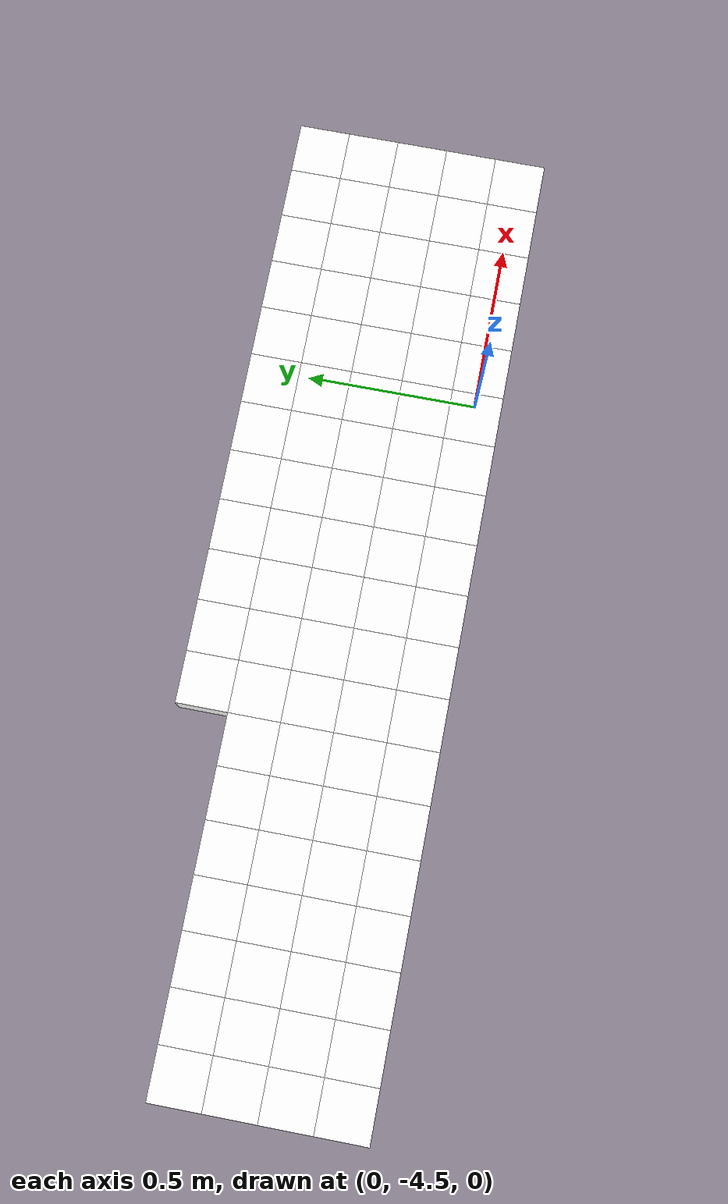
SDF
<sdf version="1.7">
 <world name="default">
  <include><uri>model://sun</uri></include>
  <model name="static_environment">
   <static>true</static>
   <link name="region_951">
    <pose>-2.000413758788262 -4.049999981591792 0.0 0.0 0.0 4.7123</pose>
    <collision name="region_951_collision">
     <geometry><box><size>0.15 0.15 0.1</size></box></geometry>
     <surface><friction><ode><mu>1.0</mu><mu2>1.0</mu2></ode></friction></surface>
    </collision>
    <visual name="region_951_visual">
     <geometry><box><size>0.15 0.15 0.1</size></box></geometry>
     <material><ambient>1.0 1.0 1.0 1.0</ambient><diffuse>1.0 1.0 1.0 1.0</diffuse></material>
    </visual>
   </link>
   <link name="region_952">
    <pose>-2.000427105845948 -4.19999998099798 0.0 0.0 0.0 4.7123</pose>
    <collision name="region_952_collision">
     <geometry><box><size>0.15 0.15 0.1</size></box></geometry>
     <surface><friction><ode><mu>1.0</mu><mu2>1.0</mu2></ode></friction></surface>
    </collision>
    <visual name="region_952_visual">
     <geometry><box><size>0.15 0.15 0.1</size></box></geometry>
     <material><ambient>1.0 1.0 1.0 1.0</ambient><diffuse>1.0 1.0 1.0 1.0</diffuse></material>
    </visual>
   </link>
   <link name="region_953">
    <pose>-2.000440452903634 -4.349999980404167 0.0 0.0 0.0 4.7123</pose>
    <collision name="region_953_collision">
     <geometry><box><size>0.15 0.15 0.1</size></box></geometry>
     <surface><friction><ode><mu>1.0</mu><mu2>1.0</mu2></ode></friction></surface>
    </collision>
    <visual name="region_953_visual">
     <geometry><box><size>0.15 0.15 0.1</size></box></geometry>
     <material><ambient>1.0 1.0 1.0 1.0</ambient><diffuse>1.0 1.0 1.0 1.0</diffuse></material>
    </visual>
   </link>
   <link name="region_954">
    <pose>-2.0004537999613197 -4.4999999798103545 0.0 0.0 0.0 4.7123</pose>
    <collision name="region_954_collision">
     <geometry><box><size>0.15 0.15 0.1</size></box></geometry>
     <surface><friction><ode><mu>1.0</mu><mu2>1.0</mu2></ode></friction></surface>
    </collision>
    <visual name="region_954_visual">
     <geometry><box><size>0.15 0.15 0.1</size></box></geometry>
     <material><ambient>1.0 1.0 1.0 1.0</ambient><diffuse>1.0 1.0 1.0 1.0</diffuse></material>
    </visual>
   </link>
   <link name="region_956">
    <pose>-1.8504137593820753 -4.050013328649478 0.0 0.0 0.0 4.7123</pose>
    <collision name="region_956_collision">
     <geometry><box><size>0.15 0.15 0.1</size></box></geometry>
     <surface><friction><ode><mu>1.0</mu><mu2>1.0</mu2></ode></friction></surface>
    </collision>
    <visual name="region_956_visual">
     <geometry><box><size>0.15 0.15 0.1</size></box></geometry>
     <material><ambient>1.0 1.0 1.0 1.0</ambient><diffuse>1.0 1.0 1.0 1.0</diffuse></material>
    </visual>
   </link>
   <link name="region_957">
    <pose>-1.8504271064397613 -4.2000133280556655 0.0 0.0 0.0 4.7123</pose>
    <collision name="region_957_collision">
     <geometry><box><size>0.15 0.15 0.1</size></box></geometry>
     <surface><friction><ode><mu>1.0</mu><mu2>1.0</mu2></ode></friction></surface>
    </collision>
    <visual name="region_957_visual">
     <geometry><box><size>0.15 0.15 0.1</size></box></geometry>
     <material><ambient>1.0 1.0 1.0 1.0</ambient><diffuse>1.0 1.0 1.0 1.0</diffuse></material>
    </visual>
   </link>
   <link name="region_958">
    <pose>-1.850440453497447 -4.350013327461853 0.0 0.0 0.0 4.7123</pose>
    <collision name="region_958_collision">
     <geometry><box><size>0.15 0.15 0.1</size></box></geometry>
     <surface><friction><ode><mu>1.0</mu><mu2>1.0</mu2></ode></friction></surface>
    </collision>
    <visual name="region_958_visual">
     <geometry><box><size>0.15 0.15 0.1</size></box></geometry>
     <material><ambient>1.0 1.0 1.0 1.0</ambient><diffuse>1.0 1.0 1.0 1.0</diffuse></material>
    </visual>
   </link>
   <link name="region_959">
    <pose>-1.850453800555133 -4.50001332686804 0.0 0.0 0.0 4.7123</pose>
    <collision name="region_959_collision">
     <geometry><box><size>0.15 0.15 0.1</size></box></geometry>
     <surface><friction><ode><mu>1.0</mu><mu2>1.0</mu2></ode></friction></surface>
    </collision>
    <visual name="region_959_visual">
     <geometry><box><size>0.15 0.15 0.1</size></box></geometry>
     <material><ambient>1.0 1.0 1.0 1.0</ambient><diffuse>1.0 1.0 1.0 1.0</diffuse></material>
    </visual>
   </link>
   <link name="region_961">
    <pose>-1.7004137599758886 -4.050026675707164 0.0 0.0 0.0 4.7123</pose>
    <collision name="region_961_collision">
     <geometry><box><size>0.15 0.15 0.1</size></box></geometry>
     <surface><friction><ode><mu>1.0</mu><mu2>1.0</mu2></ode></friction></surface>
    </collision>
    <visual name="region_961_visual">
     <geometry><box><size>0.15 0.15 0.1</size></box></geometry>
     <material><ambient>1.0 1.0 1.0 1.0</ambient><diffuse>1.0 1.0 1.0 1.0</diffuse></material>
    </visual>
   </link>
   <link name="region_962">
    <pose>-1.7004271070335744 -4.200026675113351 0.0 0.0 0.0 4.7123</pose>
    <collision name="region_962_collision">
     <geometry><box><size>0.15 0.15 0.1</size></box></geometry>
     <surface><friction><ode><mu>1.0</mu><mu2>1.0</mu2></ode></friction></surface>
    </collision>
    <visual name="region_962_visual">
     <geometry><box><size>0.15 0.15 0.1</size></box></geometry>
     <material><ambient>1.0 1.0 1.0 1.0</ambient><diffuse>1.0 1.0 1.0 1.0</diffuse></material>
    </visual>
   </link>
   <link name="region_963">
    <pose>-1.7004404540912603 -4.350026674519539 0.0 0.0 0.0 4.7123</pose>
    <collision name="region_963_collision">
     <geometry><box><size>0.15 0.15 0.1</size></box></geometry>
     <surface><friction><ode><mu>1.0</mu><mu2>1.0</mu2></ode></friction></surface>
    </collision>
    <visual name="region_963_visual">
     <geometry><box><size>0.15 0.15 0.1</size></box></geometry>
     <material><ambient>1.0 1.0 1.0 1.0</ambient><diffuse>1.0 1.0 1.0 1.0</diffuse></material>
    </visual>
   </link>
   <link name="region_964">
    <pose>-1.700453801148946 -4.500026673925726 0.0 0.0 0.0 4.7123</pose>
    <collision name="region_964_collision">
     <geometry><box><size>0.15 0.15 0.1</size></box></geometry>
     <surface><friction><ode><mu>1.0</mu><mu2>1.0</mu2></ode></friction></surface>
    </collision>
    <visual name="region_964_visual">
     <geometry><box><size>0.15 0.15 0.1</size></box></geometry>
     <material><ambient>1.0 1.0 1.0 1.0</ambient><diffuse>1.0 1.0 1.0 1.0</diffuse></material>
    </visual>
   </link>
   <link name="region_966">
    <pose>-1.5504137605697017 -4.05004002276485 0.0 0.0 0.0 4.7123</pose>
    <collision name="region_966_collision">
     <geometry><box><size>0.15 0.15 0.1</size></box></geometry>
     <surface><friction><ode><mu>1.0</mu><mu2>1.0</mu2></ode></friction></surface>
    </collision>
    <visual name="region_966_visual">
     <geometry><box><size>0.15 0.15 0.1</size></box></geometry>
     <material><ambient>1.0 1.0 1.0 1.0</ambient><diffuse>1.0 1.0 1.0 1.0</diffuse></material>
    </visual>
   </link>
   <link name="region_967">
    <pose>-1.5504271076273874 -4.200040022171037 0.0 0.0 0.0 4.7123</pose>
    <collision name="region_967_collision">
     <geometry><box><size>0.15 0.15 0.1</size></box></geometry>
     <surface><friction><ode><mu>1.0</mu><mu2>1.0</mu2></ode></friction></surface>
    </collision>
    <visual name="region_967_visual">
     <geometry><box><size>0.15 0.15 0.1</size></box></geometry>
     <material><ambient>1.0 1.0 1.0 1.0</ambient><diffuse>1.0 1.0 1.0 1.0</diffuse></material>
    </visual>
   </link>
   <link name="region_968">
    <pose>-1.5504404546850734 -4.350040021577224 0.0 0.0 0.0 4.7123</pose>
    <collision name="region_968_collision">
     <geometry><box><size>0.15 0.15 0.1</size></box></geometry>
     <surface><friction><ode><mu>1.0</mu><mu2>1.0</mu2></ode></friction></surface>
    </collision>
    <visual name="region_968_visual">
     <geometry><box><size>0.15 0.15 0.1</size></box></geometry>
     <material><ambient>1.0 1.0 1.0 1.0</ambient><diffuse>1.0 1.0 1.0 1.0</diffuse></material>
    </visual>
   </link>
   <link name="region_969">
    <pose>-1.5504538017427594 -4.500040020983412 0.0 0.0 0.0 4.7123</pose>
    <collision name="region_969_collision">
     <geometry><box><size>0.15 0.15 0.1</size></box></geometry>
     <surface><friction><ode><mu>1.0</mu><mu2>1.0</mu2></ode></friction></surface>
    </collision>
    <visual name="region_969_visual">
     <geometry><box><size>0.15 0.15 0.1</size></box></geometry>
     <material><ambient>1.0 1.0 1.0 1.0</ambient><diffuse>1.0 1.0 1.0 1.0</diffuse></material>
    </visual>
   </link>
   <link name="region_971">
    <pose>-1.4004137611635148 -4.050053369822536 0.0 0.0 0.0 4.7123</pose>
    <collision name="region_971_collision">
     <geometry><box><size>0.15 0.15 0.1</size></box></geometry>
     <surface><friction><ode><mu>1.0</mu><mu2>1.0</mu2></ode></friction></surface>
    </collision>
    <visual name="region_971_visual">
     <geometry><box><size>0.15 0.15 0.1</size></box></geometry>
     <material><ambient>1.0 1.0 1.0 1.0</ambient><diffuse>1.0 1.0 1.0 1.0</diffuse></material>
    </visual>
   </link>
   <link name="region_972">
    <pose>-1.4004271082212008 -4.200053369228724 0.0 0.0 0.0 4.7123</pose>
    <collision name="region_972_collision">
     <geometry><box><size>0.15 0.15 0.1</size></box></geometry>
     <surface><friction><ode><mu>1.0</mu><mu2>1.0</mu2></ode></friction></surface>
    </collision>
    <visual name="region_972_visual">
     <geometry><box><size>0.15 0.15 0.1</size></box></geometry>
     <material><ambient>1.0 1.0 1.0 1.0</ambient><diffuse>1.0 1.0 1.0 1.0</diffuse></material>
    </visual>
   </link>
   <link name="region_973">
    <pose>-1.4004404552788867 -4.350053368634911 0.0 0.0 0.0 4.7123</pose>
    <collision name="region_973_collision">
     <geometry><box><size>0.15 0.15 0.1</size></box></geometry>
     <surface><friction><ode><mu>1.0</mu><mu2>1.0</mu2></ode></friction></surface>
    </collision>
    <visual name="region_973_visual">
     <geometry><box><size>0.15 0.15 0.1</size></box></geometry>
     <material><ambient>1.0 1.0 1.0 1.0</ambient><diffuse>1.0 1.0 1.0 1.0</diffuse></material>
    </visual>
   </link>
   <link name="region_974">
    <pose>-1.4004538023365725 -4.500053368041098 0.0 0.0 0.0 4.7123</pose>
    <collision name="region_974_collision">
     <geometry><box><size>0.15 0.15 0.1</size></box></geometry>
     <surface><friction><ode><mu>1.0</mu><mu2>1.0</mu2></ode></friction></surface>
    </collision>
    <visual name="region_974_visual">
     <geometry><box><size>0.15 0.15 0.1</size></box></geometry>
     <material><ambient>1.0 1.0 1.0 1.0</ambient><diffuse>1.0 1.0 1.0 1.0</diffuse></material>
    </visual>
   </link>
   <link name="region_976">
    <pose>-1.2504137617573279 -4.050066716880222 0.0 0.0 0.0 4.7123</pose>
    <collision name="region_976_collision">
     <geometry><box><size>0.15 0.15 0.1</size></box></geometry>
     <surface><friction><ode><mu>1.0</mu><mu2>1.0</mu2></ode></friction></surface>
    </collision>
    <visual name="region_976_visual">
     <geometry><box><size>0.15 0.15 0.1</size></box></geometry>
     <material><ambient>1.0 1.0 1.0 1.0</ambient><diffuse>1.0 1.0 1.0 1.0</diffuse></material>
    </visual>
   </link>
   <link name="region_977">
    <pose>-1.250427108815014 -4.200066716286409 0.0 0.0 0.0 4.7123</pose>
    <collision name="region_977_collision">
     <geometry><box><size>0.15 0.15 0.1</size></box></geometry>
     <surface><friction><ode><mu>1.0</mu><mu2>1.0</mu2></ode></friction></surface>
    </collision>
    <visual name="region_977_visual">
     <geometry><box><size>0.15 0.15 0.1</size></box></geometry>
     <material><ambient>1.0 1.0 1.0 1.0</ambient><diffuse>1.0 1.0 1.0 1.0</diffuse></material>
    </visual>
   </link>
   <link name="region_978">
    <pose>-1.2504404558726998 -4.350066715692597 0.0 0.0 0.0 4.7123</pose>
    <collision name="region_978_collision">
     <geometry><box><size>0.15 0.15 0.1</size></box></geometry>
     <surface><friction><ode><mu>1.0</mu><mu2>1.0</mu2></ode></friction></surface>
    </collision>
    <visual name="region_978_visual">
     <geometry><box><size>0.15 0.15 0.1</size></box></geometry>
     <material><ambient>1.0 1.0 1.0 1.0</ambient><diffuse>1.0 1.0 1.0 1.0</diffuse></material>
    </visual>
   </link>
   <link name="region_979">
    <pose>-1.2504538029303855 -4.500066715098784 0.0 0.0 0.0 4.7123</pose>
    <collision name="region_979_collision">
     <geometry><box><size>0.15 0.15 0.1</size></box></geometry>
     <surface><friction><ode><mu>1.0</mu><mu2>1.0</mu2></ode></friction></surface>
    </collision>
    <visual name="region_979_visual">
     <geometry><box><size>0.15 0.15 0.1</size></box></geometry>
     <material><ambient>1.0 1.0 1.0 1.0</ambient><diffuse>1.0 1.0 1.0 1.0</diffuse></material>
    </visual>
   </link>
   <link name="region_981">
    <pose>-1.100413762351141 -4.050080063937908 0.0 0.0 0.0 4.7123</pose>
    <collision name="region_981_collision">
     <geometry><box><size>0.15 0.15 0.1</size></box></geometry>
     <surface><friction><ode><mu>1.0</mu><mu2>1.0</mu2></ode></friction></surface>
    </collision>
    <visual name="region_981_visual">
     <geometry><box><size>0.15 0.15 0.1</size></box></geometry>
     <material><ambient>1.0 1.0 1.0 1.0</ambient><diffuse>1.0 1.0 1.0 1.0</diffuse></material>
    </visual>
   </link>
   <link name="region_982">
    <pose>-1.1004271094088272 -4.200080063344095 0.0 0.0 0.0 4.7123</pose>
    <collision name="region_982_collision">
     <geometry><box><size>0.15 0.15 0.1</size></box></geometry>
     <surface><friction><ode><mu>1.0</mu><mu2>1.0</mu2></ode></friction></surface>
    </collision>
    <visual name="region_982_visual">
     <geometry><box><size>0.15 0.15 0.1</size></box></geometry>
     <material><ambient>1.0 1.0 1.0 1.0</ambient><diffuse>1.0 1.0 1.0 1.0</diffuse></material>
    </visual>
   </link>
   <link name="region_983">
    <pose>-1.100440456466513 -4.3500800627502825 0.0 0.0 0.0 4.7123</pose>
    <collision name="region_983_collision">
     <geometry><box><size>0.15 0.15 0.1</size></box></geometry>
     <surface><friction><ode><mu>1.0</mu><mu2>1.0</mu2></ode></friction></surface>
    </collision>
    <visual name="region_983_visual">
     <geometry><box><size>0.15 0.15 0.1</size></box></geometry>
     <material><ambient>1.0 1.0 1.0 1.0</ambient><diffuse>1.0 1.0 1.0 1.0</diffuse></material>
    </visual>
   </link>
   <link name="region_984">
    <pose>-1.1004538035241986 -4.50008006215647 0.0 0.0 0.0 4.7123</pose>
    <collision name="region_984_collision">
     <geometry><box><size>0.15 0.15 0.1</size></box></geometry>
     <surface><friction><ode><mu>1.0</mu><mu2>1.0</mu2></ode></friction></surface>
    </collision>
    <visual name="region_984_visual">
     <geometry><box><size>0.15 0.15 0.1</size></box></geometry>
     <material><ambient>1.0 1.0 1.0 1.0</ambient><diffuse>1.0 1.0 1.0 1.0</diffuse></material>
    </visual>
   </link>
   <link name="region_985">
    <pose>-0.9504004158872683 -3.9000934115894057 0.0 0.0 0.0 4.7123</pose>
    <collision name="region_985_collision">
     <geometry><box><size>0.15 0.15 0.1</size></box></geometry>
     <surface><friction><ode><mu>1.0</mu><mu2>1.0</mu2></ode></friction></surface>
    </collision>
    <visual name="region_985_visual">
     <geometry><box><size>0.15 0.15 0.1</size></box></geometry>
     <material><ambient>1.0 1.0 1.0 1.0</ambient><diffuse>1.0 1.0 1.0 1.0</diffuse></material>
    </visual>
   </link>
   <link name="region_986">
    <pose>-0.9504137629449543 -4.0500934109955935 0.0 0.0 0.0 4.7123</pose>
    <collision name="region_986_collision">
     <geometry><box><size>0.15 0.15 0.1</size></box></geometry>
     <surface><friction><ode><mu>1.0</mu><mu2>1.0</mu2></ode></friction></surface>
    </collision>
    <visual name="region_986_visual">
     <geometry><box><size>0.15 0.15 0.1</size></box></geometry>
     <material><ambient>1.0 1.0 1.0 1.0</ambient><diffuse>1.0 1.0 1.0 1.0</diffuse></material>
    </visual>
   </link>
   <link name="region_987">
    <pose>-0.95042711000264 -4.200093410401781 0.0 0.0 0.0 4.7123</pose>
    <collision name="region_987_collision">
     <geometry><box><size>0.15 0.15 0.1</size></box></geometry>
     <surface><friction><ode><mu>1.0</mu><mu2>1.0</mu2></ode></friction></surface>
    </collision>
    <visual name="region_987_visual">
     <geometry><box><size>0.15 0.15 0.1</size></box></geometry>
     <material><ambient>1.0 1.0 1.0 1.0</ambient><diffuse>1.0 1.0 1.0 1.0</diffuse></material>
    </visual>
   </link>
   <link name="region_988">
    <pose>-0.950440457060326 -4.350093409807968 0.0 0.0 0.0 4.7123</pose>
    <collision name="region_988_collision">
     <geometry><box><size>0.15 0.15 0.1</size></box></geometry>
     <surface><friction><ode><mu>1.0</mu><mu2>1.0</mu2></ode></friction></surface>
    </collision>
    <visual name="region_988_visual">
     <geometry><box><size>0.15 0.15 0.1</size></box></geometry>
     <material><ambient>1.0 1.0 1.0 1.0</ambient><diffuse>1.0 1.0 1.0 1.0</diffuse></material>
    </visual>
   </link>
   <link name="region_989">
    <pose>-0.950453804118012 -4.500093409214156 0.0 0.0 0.0 4.7123</pose>
    <collision name="region_989_collision">
     <geometry><box><size>0.15 0.15 0.1</size></box></geometry>
     <surface><friction><ode><mu>1.0</mu><mu2>1.0</mu2></ode></friction></surface>
    </collision>
    <visual name="region_989_visual">
     <geometry><box><size>0.15 0.15 0.1</size></box></geometry>
     <material><ambient>1.0 1.0 1.0 1.0</ambient><diffuse>1.0 1.0 1.0 1.0</diffuse></material>
    </visual>
   </link>
   <link name="region_990">
    <pose>-0.8004004164810816 -3.9001067586470914 0.0 0.0 0.0 4.7123</pose>
    <collision name="region_990_collision">
     <geometry><box><size>0.15 0.15 0.1</size></box></geometry>
     <surface><friction><ode><mu>1.0</mu><mu2>1.0</mu2></ode></friction></surface>
    </collision>
    <visual name="region_990_visual">
     <geometry><box><size>0.15 0.15 0.1</size></box></geometry>
     <material><ambient>1.0 1.0 1.0 1.0</ambient><diffuse>1.0 1.0 1.0 1.0</diffuse></material>
    </visual>
   </link>
   <link name="region_991">
    <pose>-0.8004137635387676 -4.050106758053279 0.0 0.0 0.0 4.7123</pose>
    <collision name="region_991_collision">
     <geometry><box><size>0.15 0.15 0.1</size></box></geometry>
     <surface><friction><ode><mu>1.0</mu><mu2>1.0</mu2></ode></friction></surface>
    </collision>
    <visual name="region_991_visual">
     <geometry><box><size>0.15 0.15 0.1</size></box></geometry>
     <material><ambient>1.0 1.0 1.0 1.0</ambient><diffuse>1.0 1.0 1.0 1.0</diffuse></material>
    </visual>
   </link>
   <link name="region_992">
    <pose>-0.8004271105964533 -4.200106757459467 0.0 0.0 0.0 4.7123</pose>
    <collision name="region_992_collision">
     <geometry><box><size>0.15 0.15 0.1</size></box></geometry>
     <surface><friction><ode><mu>1.0</mu><mu2>1.0</mu2></ode></friction></surface>
    </collision>
    <visual name="region_992_visual">
     <geometry><box><size>0.15 0.15 0.1</size></box></geometry>
     <material><ambient>1.0 1.0 1.0 1.0</ambient><diffuse>1.0 1.0 1.0 1.0</diffuse></material>
    </visual>
   </link>
   <link name="region_993">
    <pose>-0.8004404576541393 -4.350106756865654 0.0 0.0 0.0 4.7123</pose>
    <collision name="region_993_collision">
     <geometry><box><size>0.15 0.15 0.1</size></box></geometry>
     <surface><friction><ode><mu>1.0</mu><mu2>1.0</mu2></ode></friction></surface>
    </collision>
    <visual name="region_993_visual">
     <geometry><box><size>0.15 0.15 0.1</size></box></geometry>
     <material><ambient>1.0 1.0 1.0 1.0</ambient><diffuse>1.0 1.0 1.0 1.0</diffuse></material>
    </visual>
   </link>
   <link name="region_994">
    <pose>-0.8004538047118253 -4.500106756271841 0.0 0.0 0.0 4.7123</pose>
    <collision name="region_994_collision">
     <geometry><box><size>0.15 0.15 0.1</size></box></geometry>
     <surface><friction><ode><mu>1.0</mu><mu2>1.0</mu2></ode></friction></surface>
    </collision>
    <visual name="region_994_visual">
     <geometry><box><size>0.15 0.15 0.1</size></box></geometry>
     <material><ambient>1.0 1.0 1.0 1.0</ambient><diffuse>1.0 1.0 1.0 1.0</diffuse></material>
    </visual>
   </link>
   <link name="region_995">
    <pose>-0.6504004170748949 -3.900120105704777 0.0 0.0 0.0 4.7123</pose>
    <collision name="region_995_collision">
     <geometry><box><size>0.15 0.15 0.1</size></box></geometry>
     <surface><friction><ode><mu>1.0</mu><mu2>1.0</mu2></ode></friction></surface>
    </collision>
    <visual name="region_995_visual">
     <geometry><box><size>0.15 0.15 0.1</size></box></geometry>
     <material><ambient>1.0 1.0 1.0 1.0</ambient><diffuse>1.0 1.0 1.0 1.0</diffuse></material>
    </visual>
   </link>
   <link name="region_996">
    <pose>-0.6504137641325809 -4.050120105110965 0.0 0.0 0.0 4.7123</pose>
    <collision name="region_996_collision">
     <geometry><box><size>0.15 0.15 0.1</size></box></geometry>
     <surface><friction><ode><mu>1.0</mu><mu2>1.0</mu2></ode></friction></surface>
    </collision>
    <visual name="region_996_visual">
     <geometry><box><size>0.15 0.15 0.1</size></box></geometry>
     <material><ambient>1.0 1.0 1.0 1.0</ambient><diffuse>1.0 1.0 1.0 1.0</diffuse></material>
    </visual>
   </link>
   <link name="region_997">
    <pose>-0.6504271111902666 -4.200120104517152 0.0 0.0 0.0 4.7123</pose>
    <collision name="region_997_collision">
     <geometry><box><size>0.15 0.15 0.1</size></box></geometry>
     <surface><friction><ode><mu>1.0</mu><mu2>1.0</mu2></ode></friction></surface>
    </collision>
    <visual name="region_997_visual">
     <geometry><box><size>0.15 0.15 0.1</size></box></geometry>
     <material><ambient>1.0 1.0 1.0 1.0</ambient><diffuse>1.0 1.0 1.0 1.0</diffuse></material>
    </visual>
   </link>
   <link name="region_998">
    <pose>-0.6504404582479526 -4.35012010392334 0.0 0.0 0.0 4.7123</pose>
    <collision name="region_998_collision">
     <geometry><box><size>0.15 0.15 0.1</size></box></geometry>
     <surface><friction><ode><mu>1.0</mu><mu2>1.0</mu2></ode></friction></surface>
    </collision>
    <visual name="region_998_visual">
     <geometry><box><size>0.15 0.15 0.1</size></box></geometry>
     <material><ambient>1.0 1.0 1.0 1.0</ambient><diffuse>1.0 1.0 1.0 1.0</diffuse></material>
    </visual>
   </link>
   <link name="region_999">
    <pose>-0.6504538053056386 -4.500120103329527 0.0 0.0 0.0 4.7123</pose>
    <collision name="region_999_collision">
     <geometry><box><size>0.15 0.15 0.1</size></box></geometry>
     <surface><friction><ode><mu>1.0</mu><mu2>1.0</mu2></ode></friction></surface>
    </collision>
    <visual name="region_999_visual">
     <geometry><box><size>0.15 0.15 0.1</size></box></geometry>
     <material><ambient>1.0 1.0 1.0 1.0</ambient><diffuse>1.0 1.0 1.0 1.0</diffuse></material>
    </visual>
   </link>
   <link name="region_1000">
    <pose>-0.500400417668708 -3.900133452762464 0.0 0.0 0.0 4.7123</pose>
    <collision name="region_1000_collision">
     <geometry><box><size>0.15 0.15 0.1</size></box></geometry>
     <surface><friction><ode><mu>1.0</mu><mu2>1.0</mu2></ode></friction></surface>
    </collision>
    <visual name="region_1000_visual">
     <geometry><box><size>0.15 0.15 0.1</size></box></geometry>
     <material><ambient>1.0 1.0 1.0 1.0</ambient><diffuse>1.0 1.0 1.0 1.0</diffuse></material>
    </visual>
   </link>
   <link name="region_1001">
    <pose>-0.500413764726394 -4.050133452168652 0.0 0.0 0.0 4.7123</pose>
    <collision name="region_1001_collision">
     <geometry><box><size>0.15 0.15 0.1</size></box></geometry>
     <surface><friction><ode><mu>1.0</mu><mu2>1.0</mu2></ode></friction></surface>
    </collision>
    <visual name="region_1001_visual">
     <geometry><box><size>0.15 0.15 0.1</size></box></geometry>
     <material><ambient>1.0 1.0 1.0 1.0</ambient><diffuse>1.0 1.0 1.0 1.0</diffuse></material>
    </visual>
   </link>
   <link name="region_1002">
    <pose>-0.5004271117840797 -4.200133451574839 0.0 0.0 0.0 4.7123</pose>
    <collision name="region_1002_collision">
     <geometry><box><size>0.15 0.15 0.1</size></box></geometry>
     <surface><friction><ode><mu>1.0</mu><mu2>1.0</mu2></ode></friction></surface>
    </collision>
    <visual name="region_1002_visual">
     <geometry><box><size>0.15 0.15 0.1</size></box></geometry>
     <material><ambient>1.0 1.0 1.0 1.0</ambient><diffuse>1.0 1.0 1.0 1.0</diffuse></material>
    </visual>
   </link>
   <link name="region_1003">
    <pose>-0.5004404588417657 -4.350133450981026 0.0 0.0 0.0 4.7123</pose>
    <collision name="region_1003_collision">
     <geometry><box><size>0.15 0.15 0.1</size></box></geometry>
     <surface><friction><ode><mu>1.0</mu><mu2>1.0</mu2></ode></friction></surface>
    </collision>
    <visual name="region_1003_visual">
     <geometry><box><size>0.15 0.15 0.1</size></box></geometry>
     <material><ambient>1.0 1.0 1.0 1.0</ambient><diffuse>1.0 1.0 1.0 1.0</diffuse></material>
    </visual>
   </link>
   <link name="region_1004">
    <pose>-0.5004538058994517 -4.500133450387214 0.0 0.0 0.0 4.7123</pose>
    <collision name="region_1004_collision">
     <geometry><box><size>0.15 0.15 0.1</size></box></geometry>
     <surface><friction><ode><mu>1.0</mu><mu2>1.0</mu2></ode></friction></surface>
    </collision>
    <visual name="region_1004_visual">
     <geometry><box><size>0.15 0.15 0.1</size></box></geometry>
     <material><ambient>1.0 1.0 1.0 1.0</ambient><diffuse>1.0 1.0 1.0 1.0</diffuse></material>
    </visual>
   </link>
   <link name="region_1005">
    <pose>-0.35040041826252133 -3.9001467998201496 0.0 0.0 0.0 4.7123</pose>
    <collision name="region_1005_collision">
     <geometry><box><size>0.15 0.15 0.1</size></box></geometry>
     <surface><friction><ode><mu>1.0</mu><mu2>1.0</mu2></ode></friction></surface>
    </collision>
    <visual name="region_1005_visual">
     <geometry><box><size>0.15 0.15 0.1</size></box></geometry>
     <material><ambient>1.0 1.0 1.0 1.0</ambient><diffuse>1.0 1.0 1.0 1.0</diffuse></material>
    </visual>
   </link>
   <link name="region_1006">
    <pose>-0.3504137653202073 -4.050146799226337 0.0 0.0 0.0 4.7123</pose>
    <collision name="region_1006_collision">
     <geometry><box><size>0.15 0.15 0.1</size></box></geometry>
     <surface><friction><ode><mu>1.0</mu><mu2>1.0</mu2></ode></friction></surface>
    </collision>
    <visual name="region_1006_visual">
     <geometry><box><size>0.15 0.15 0.1</size></box></geometry>
     <material><ambient>1.0 1.0 1.0 1.0</ambient><diffuse>1.0 1.0 1.0 1.0</diffuse></material>
    </visual>
   </link>
   <link name="region_1007">
    <pose>-0.35042711237789304 -4.200146798632525 0.0 0.0 0.0 4.7123</pose>
    <collision name="region_1007_collision">
     <geometry><box><size>0.15 0.15 0.1</size></box></geometry>
     <surface><friction><ode><mu>1.0</mu><mu2>1.0</mu2></ode></friction></surface>
    </collision>
    <visual name="region_1007_visual">
     <geometry><box><size>0.15 0.15 0.1</size></box></geometry>
     <material><ambient>1.0 1.0 1.0 1.0</ambient><diffuse>1.0 1.0 1.0 1.0</diffuse></material>
    </visual>
   </link>
   <link name="region_1008">
    <pose>-0.350440459435579 -4.350146798038712 0.0 0.0 0.0 4.7123</pose>
    <collision name="region_1008_collision">
     <geometry><box><size>0.15 0.15 0.1</size></box></geometry>
     <surface><friction><ode><mu>1.0</mu><mu2>1.0</mu2></ode></friction></surface>
    </collision>
    <visual name="region_1008_visual">
     <geometry><box><size>0.15 0.15 0.1</size></box></geometry>
     <material><ambient>1.0 1.0 1.0 1.0</ambient><diffuse>1.0 1.0 1.0 1.0</diffuse></material>
    </visual>
   </link>
   <link name="region_1009">
    <pose>-0.35045380649326496 -4.500146797444899 0.0 0.0 0.0 4.7123</pose>
    <collision name="region_1009_collision">
     <geometry><box><size>0.15 0.15 0.1</size></box></geometry>
     <surface><friction><ode><mu>1.0</mu><mu2>1.0</mu2></ode></friction></surface>
    </collision>
    <visual name="region_1009_visual">
     <geometry><box><size>0.15 0.15 0.1</size></box></geometry>
     <material><ambient>1.0 1.0 1.0 1.0</ambient><diffuse>1.0 1.0 1.0 1.0</diffuse></material>
    </visual>
   </link>
   <link name="region_1010">
    <pose>-0.20040041885633464 -3.9001601468778353 0.0 0.0 0.0 4.7123</pose>
    <collision name="region_1010_collision">
     <geometry><box><size>0.15 0.15 0.1</size></box></geometry>
     <surface><friction><ode><mu>1.0</mu><mu2>1.0</mu2></ode></friction></surface>
    </collision>
    <visual name="region_1010_visual">
     <geometry><box><size>0.15 0.15 0.1</size></box></geometry>
     <material><ambient>1.0 1.0 1.0 1.0</ambient><diffuse>1.0 1.0 1.0 1.0</diffuse></material>
    </visual>
   </link>
   <link name="region_1011">
    <pose>-0.2004137659140206 -4.050160146284023 0.0 0.0 0.0 4.7123</pose>
    <collision name="region_1011_collision">
     <geometry><box><size>0.15 0.15 0.1</size></box></geometry>
     <surface><friction><ode><mu>1.0</mu><mu2>1.0</mu2></ode></friction></surface>
    </collision>
    <visual name="region_1011_visual">
     <geometry><box><size>0.15 0.15 0.1</size></box></geometry>
     <material><ambient>1.0 1.0 1.0 1.0</ambient><diffuse>1.0 1.0 1.0 1.0</diffuse></material>
    </visual>
   </link>
   <link name="region_1012">
    <pose>-0.20042711297170634 -4.2001601456902105 0.0 0.0 0.0 4.7123</pose>
    <collision name="region_1012_collision">
     <geometry><box><size>0.15 0.15 0.1</size></box></geometry>
     <surface><friction><ode><mu>1.0</mu><mu2>1.0</mu2></ode></friction></surface>
    </collision>
    <visual name="region_1012_visual">
     <geometry><box><size>0.15 0.15 0.1</size></box></geometry>
     <material><ambient>1.0 1.0 1.0 1.0</ambient><diffuse>1.0 1.0 1.0 1.0</diffuse></material>
    </visual>
   </link>
   <link name="region_1013">
    <pose>-0.2004404600293923 -4.350160145096398 0.0 0.0 0.0 4.7123</pose>
    <collision name="region_1013_collision">
     <geometry><box><size>0.15 0.15 0.1</size></box></geometry>
     <surface><friction><ode><mu>1.0</mu><mu2>1.0</mu2></ode></friction></surface>
    </collision>
    <visual name="region_1013_visual">
     <geometry><box><size>0.15 0.15 0.1</size></box></geometry>
     <material><ambient>1.0 1.0 1.0 1.0</ambient><diffuse>1.0 1.0 1.0 1.0</diffuse></material>
    </visual>
   </link>
   <link name="region_1014">
    <pose>-0.20045380708707827 -4.500160144502585 0.0 0.0 0.0 4.7123</pose>
    <collision name="region_1014_collision">
     <geometry><box><size>0.15 0.15 0.1</size></box></geometry>
     <surface><friction><ode><mu>1.0</mu><mu2>1.0</mu2></ode></friction></surface>
    </collision>
    <visual name="region_1014_visual">
     <geometry><box><size>0.15 0.15 0.1</size></box></geometry>
     <material><ambient>1.0 1.0 1.0 1.0</ambient><diffuse>1.0 1.0 1.0 1.0</diffuse></material>
    </visual>
   </link>
   <link name="region_1015">
    <pose>-0.05040041945014795 -3.900173493935521 0.0 0.0 0.0 4.7123</pose>
    <collision name="region_1015_collision">
     <geometry><box><size>0.15 0.15 0.1</size></box></geometry>
     <surface><friction><ode><mu>1.0</mu><mu2>1.0</mu2></ode></friction></surface>
    </collision>
    <visual name="region_1015_visual">
     <geometry><box><size>0.15 0.15 0.1</size></box></geometry>
     <material><ambient>1.0 1.0 1.0 1.0</ambient><diffuse>1.0 1.0 1.0 1.0</diffuse></material>
    </visual>
   </link>
   <link name="region_1016">
    <pose>-0.05041376650783391 -4.050173493341709 0.0 0.0 0.0 4.7123</pose>
    <collision name="region_1016_collision">
     <geometry><box><size>0.15 0.15 0.1</size></box></geometry>
     <surface><friction><ode><mu>1.0</mu><mu2>1.0</mu2></ode></friction></surface>
    </collision>
    <visual name="region_1016_visual">
     <geometry><box><size>0.15 0.15 0.1</size></box></geometry>
     <material><ambient>1.0 1.0 1.0 1.0</ambient><diffuse>1.0 1.0 1.0 1.0</diffuse></material>
    </visual>
   </link>
   <link name="region_1017">
    <pose>-0.050427113565519655 -4.200173492747896 0.0 0.0 0.0 4.7123</pose>
    <collision name="region_1017_collision">
     <geometry><box><size>0.15 0.15 0.1</size></box></geometry>
     <surface><friction><ode><mu>1.0</mu><mu2>1.0</mu2></ode></friction></surface>
    </collision>
    <visual name="region_1017_visual">
     <geometry><box><size>0.15 0.15 0.1</size></box></geometry>
     <material><ambient>1.0 1.0 1.0 1.0</ambient><diffuse>1.0 1.0 1.0 1.0</diffuse></material>
    </visual>
   </link>
   <link name="region_1018">
    <pose>-0.05044046062320562 -4.3501734921540836 0.0 0.0 0.0 4.7123</pose>
    <collision name="region_1018_collision">
     <geometry><box><size>0.15 0.15 0.1</size></box></geometry>
     <surface><friction><ode><mu>1.0</mu><mu2>1.0</mu2></ode></friction></surface>
    </collision>
    <visual name="region_1018_visual">
     <geometry><box><size>0.15 0.15 0.1</size></box></geometry>
     <material><ambient>1.0 1.0 1.0 1.0</ambient><diffuse>1.0 1.0 1.0 1.0</diffuse></material>
    </visual>
   </link>
   <link name="region_1019">
    <pose>-0.05045380768089158 -4.500173491560271 0.0 0.0 0.0 4.7123</pose>
    <collision name="region_1019_collision">
     <geometry><box><size>0.15 0.15 0.1</size></box></geometry>
     <surface><friction><ode><mu>1.0</mu><mu2>1.0</mu2></ode></friction></surface>
    </collision>
    <visual name="region_1019_visual">
     <geometry><box><size>0.15 0.15 0.1</size></box></geometry>
     <material><ambient>1.0 1.0 1.0 1.0</ambient><diffuse>1.0 1.0 1.0 1.0</diffuse></material>
    </visual>
   </link>
   <link name="region_1020">
    <pose>0.09959957995603919 -3.900186840993207 0.0 0.0 0.0 4.7123</pose>
    <collision name="region_1020_collision">
     <geometry><box><size>0.15 0.15 0.1</size></box></geometry>
     <surface><friction><ode><mu>1.0</mu><mu2>1.0</mu2></ode></friction></surface>
    </collision>
    <visual name="region_1020_visual">
     <geometry><box><size>0.15 0.15 0.1</size></box></geometry>
     <material><ambient>1.0 1.0 1.0 1.0</ambient><diffuse>1.0 1.0 1.0 1.0</diffuse></material>
    </visual>
   </link>
   <link name="region_1021">
    <pose>0.09958623289835344 -4.050186840399395 0.0 0.0 0.0 4.7123</pose>
    <collision name="region_1021_collision">
     <geometry><box><size>0.15 0.15 0.1</size></box></geometry>
     <surface><friction><ode><mu>1.0</mu><mu2>1.0</mu2></ode></friction></surface>
    </collision>
    <visual name="region_1021_visual">
     <geometry><box><size>0.15 0.15 0.1</size></box></geometry>
     <material><ambient>1.0 1.0 1.0 1.0</ambient><diffuse>1.0 1.0 1.0 1.0</diffuse></material>
    </visual>
   </link>
   <link name="region_1022">
    <pose>0.09957288584066726 -4.200186839805582 0.0 0.0 0.0 4.7123</pose>
    <collision name="region_1022_collision">
     <geometry><box><size>0.15 0.15 0.1</size></box></geometry>
     <surface><friction><ode><mu>1.0</mu><mu2>1.0</mu2></ode></friction></surface>
    </collision>
    <visual name="region_1022_visual">
     <geometry><box><size>0.15 0.15 0.1</size></box></geometry>
     <material><ambient>1.0 1.0 1.0 1.0</ambient><diffuse>1.0 1.0 1.0 1.0</diffuse></material>
    </visual>
   </link>
   <link name="region_1023">
    <pose>0.09955953878298152 -4.350186839211769 0.0 0.0 0.0 4.7123</pose>
    <collision name="region_1023_collision">
     <geometry><box><size>0.15 0.15 0.1</size></box></geometry>
     <surface><friction><ode><mu>1.0</mu><mu2>1.0</mu2></ode></friction></surface>
    </collision>
    <visual name="region_1023_visual">
     <geometry><box><size>0.15 0.15 0.1</size></box></geometry>
     <material><ambient>1.0 1.0 1.0 1.0</ambient><diffuse>1.0 1.0 1.0 1.0</diffuse></material>
    </visual>
   </link>
   <link name="region_1024">
    <pose>0.09954619172529577 -4.500186838617957 0.0 0.0 0.0 4.7123</pose>
    <collision name="region_1024_collision">
     <geometry><box><size>0.15 0.15 0.1</size></box></geometry>
     <surface><friction><ode><mu>1.0</mu><mu2>1.0</mu2></ode></friction></surface>
    </collision>
    <visual name="region_1024_visual">
     <geometry><box><size>0.15 0.15 0.1</size></box></geometry>
     <material><ambient>1.0 1.0 1.0 1.0</ambient><diffuse>1.0 1.0 1.0 1.0</diffuse></material>
    </visual>
   </link>
   <link name="region_1025">
    <pose>0.24959957936222565 -3.9002001880508925 0.0 0.0 0.0 4.7123</pose>
    <collision name="region_1025_collision">
     <geometry><box><size>0.15 0.15 0.1</size></box></geometry>
     <surface><friction><ode><mu>1.0</mu><mu2>1.0</mu2></ode></friction></surface>
    </collision>
    <visual name="region_1025_visual">
     <geometry><box><size>0.15 0.15 0.1</size></box></geometry>
     <material><ambient>1.0 1.0 1.0 1.0</ambient><diffuse>1.0 1.0 1.0 1.0</diffuse></material>
    </visual>
   </link>
   <link name="region_1026">
    <pose>0.2495862323045399 -4.05020018745708 0.0 0.0 0.0 4.7123</pose>
    <collision name="region_1026_collision">
     <geometry><box><size>0.15 0.15 0.1</size></box></geometry>
     <surface><friction><ode><mu>1.0</mu><mu2>1.0</mu2></ode></friction></surface>
    </collision>
    <visual name="region_1026_visual">
     <geometry><box><size>0.15 0.15 0.1</size></box></geometry>
     <material><ambient>1.0 1.0 1.0 1.0</ambient><diffuse>1.0 1.0 1.0 1.0</diffuse></material>
    </visual>
   </link>
   <link name="region_1027">
    <pose>0.24957288524685373 -4.200200186863268 0.0 0.0 0.0 4.7123</pose>
    <collision name="region_1027_collision">
     <geometry><box><size>0.15 0.15 0.1</size></box></geometry>
     <surface><friction><ode><mu>1.0</mu><mu2>1.0</mu2></ode></friction></surface>
    </collision>
    <visual name="region_1027_visual">
     <geometry><box><size>0.15 0.15 0.1</size></box></geometry>
     <material><ambient>1.0 1.0 1.0 1.0</ambient><diffuse>1.0 1.0 1.0 1.0</diffuse></material>
    </visual>
   </link>
   <link name="region_1028">
    <pose>0.24955953818916798 -4.350200186269455 0.0 0.0 0.0 4.7123</pose>
    <collision name="region_1028_collision">
     <geometry><box><size>0.15 0.15 0.1</size></box></geometry>
     <surface><friction><ode><mu>1.0</mu><mu2>1.0</mu2></ode></friction></surface>
    </collision>
    <visual name="region_1028_visual">
     <geometry><box><size>0.15 0.15 0.1</size></box></geometry>
     <material><ambient>1.0 1.0 1.0 1.0</ambient><diffuse>1.0 1.0 1.0 1.0</diffuse></material>
    </visual>
   </link>
   <link name="region_1029">
    <pose>0.24954619113148224 -4.500200185675642 0.0 0.0 0.0 4.7123</pose>
    <collision name="region_1029_collision">
     <geometry><box><size>0.15 0.15 0.1</size></box></geometry>
     <surface><friction><ode><mu>1.0</mu><mu2>1.0</mu2></ode></friction></surface>
    </collision>
    <visual name="region_1029_visual">
     <geometry><box><size>0.15 0.15 0.1</size></box></geometry>
     <material><ambient>1.0 1.0 1.0 1.0</ambient><diffuse>1.0 1.0 1.0 1.0</diffuse></material>
    </visual>
   </link>
   <link name="region_1030">
    <pose>0.39959957876841257 -3.9002135351085783 0.0 0.0 0.0 4.7123</pose>
    <collision name="region_1030_collision">
     <geometry><box><size>0.15 0.15 0.1</size></box></geometry>
     <surface><friction><ode><mu>1.0</mu><mu2>1.0</mu2></ode></friction></surface>
    </collision>
    <visual name="region_1030_visual">
     <geometry><box><size>0.15 0.15 0.1</size></box></geometry>
     <material><ambient>1.0 1.0 1.0 1.0</ambient><diffuse>1.0 1.0 1.0 1.0</diffuse></material>
    </visual>
   </link>
   <link name="region_1031">
    <pose>0.3995862317107268 -4.050213534514766 0.0 0.0 0.0 4.7123</pose>
    <collision name="region_1031_collision">
     <geometry><box><size>0.15 0.15 0.1</size></box></geometry>
     <surface><friction><ode><mu>1.0</mu><mu2>1.0</mu2></ode></friction></surface>
    </collision>
    <visual name="region_1031_visual">
     <geometry><box><size>0.15 0.15 0.1</size></box></geometry>
     <material><ambient>1.0 1.0 1.0 1.0</ambient><diffuse>1.0 1.0 1.0 1.0</diffuse></material>
    </visual>
   </link>
   <link name="region_1032">
    <pose>0.39957288465304064 -4.200213533920953 0.0 0.0 0.0 4.7123</pose>
    <collision name="region_1032_collision">
     <geometry><box><size>0.15 0.15 0.1</size></box></geometry>
     <surface><friction><ode><mu>1.0</mu><mu2>1.0</mu2></ode></friction></surface>
    </collision>
    <visual name="region_1032_visual">
     <geometry><box><size>0.15 0.15 0.1</size></box></geometry>
     <material><ambient>1.0 1.0 1.0 1.0</ambient><diffuse>1.0 1.0 1.0 1.0</diffuse></material>
    </visual>
   </link>
   <link name="region_1033">
    <pose>0.3995595375953549 -4.350213533327141 0.0 0.0 0.0 4.7123</pose>
    <collision name="region_1033_collision">
     <geometry><box><size>0.15 0.15 0.1</size></box></geometry>
     <surface><friction><ode><mu>1.0</mu><mu2>1.0</mu2></ode></friction></surface>
    </collision>
    <visual name="region_1033_visual">
     <geometry><box><size>0.15 0.15 0.1</size></box></geometry>
     <material><ambient>1.0 1.0 1.0 1.0</ambient><diffuse>1.0 1.0 1.0 1.0</diffuse></material>
    </visual>
   </link>
   <link name="region_1034">
    <pose>0.39954619053766915 -4.500213532733328 0.0 0.0 0.0 4.7123</pose>
    <collision name="region_1034_collision">
     <geometry><box><size>0.15 0.15 0.1</size></box></geometry>
     <surface><friction><ode><mu>1.0</mu><mu2>1.0</mu2></ode></friction></surface>
    </collision>
    <visual name="region_1034_visual">
     <geometry><box><size>0.15 0.15 0.1</size></box></geometry>
     <material><ambient>1.0 1.0 1.0 1.0</ambient><diffuse>1.0 1.0 1.0 1.0</diffuse></material>
    </visual>
   </link>
   <link name="region_1035">
    <pose>0.5495995781745995 -3.900226882166265 0.0 0.0 0.0 4.7123</pose>
    <collision name="region_1035_collision">
     <geometry><box><size>0.15 0.15 0.1</size></box></geometry>
     <surface><friction><ode><mu>1.0</mu><mu2>1.0</mu2></ode></friction></surface>
    </collision>
    <visual name="region_1035_visual">
     <geometry><box><size>0.15 0.15 0.1</size></box></geometry>
     <material><ambient>1.0 1.0 1.0 1.0</ambient><diffuse>1.0 1.0 1.0 1.0</diffuse></material>
    </visual>
   </link>
   <link name="region_1036">
    <pose>0.5495862311169137 -4.050226881572453 0.0 0.0 0.0 4.7123</pose>
    <collision name="region_1036_collision">
     <geometry><box><size>0.15 0.15 0.1</size></box></geometry>
     <surface><friction><ode><mu>1.0</mu><mu2>1.0</mu2></ode></friction></surface>
    </collision>
    <visual name="region_1036_visual">
     <geometry><box><size>0.15 0.15 0.1</size></box></geometry>
     <material><ambient>1.0 1.0 1.0 1.0</ambient><diffuse>1.0 1.0 1.0 1.0</diffuse></material>
    </visual>
   </link>
   <link name="region_1037">
    <pose>0.5495728840592276 -4.20022688097864 0.0 0.0 0.0 4.7123</pose>
    <collision name="region_1037_collision">
     <geometry><box><size>0.15 0.15 0.1</size></box></geometry>
     <surface><friction><ode><mu>1.0</mu><mu2>1.0</mu2></ode></friction></surface>
    </collision>
    <visual name="region_1037_visual">
     <geometry><box><size>0.15 0.15 0.1</size></box></geometry>
     <material><ambient>1.0 1.0 1.0 1.0</ambient><diffuse>1.0 1.0 1.0 1.0</diffuse></material>
    </visual>
   </link>
   <link name="region_1038">
    <pose>0.5495595370015418 -4.350226880384827 0.0 0.0 0.0 4.7123</pose>
    <collision name="region_1038_collision">
     <geometry><box><size>0.15 0.15 0.1</size></box></geometry>
     <surface><friction><ode><mu>1.0</mu><mu2>1.0</mu2></ode></friction></surface>
    </collision>
    <visual name="region_1038_visual">
     <geometry><box><size>0.15 0.15 0.1</size></box></geometry>
     <material><ambient>1.0 1.0 1.0 1.0</ambient><diffuse>1.0 1.0 1.0 1.0</diffuse></material>
    </visual>
   </link>
   <link name="region_1039">
    <pose>0.5495461899438561 -4.500226879791015 0.0 0.0 0.0 4.7123</pose>
    <collision name="region_1039_collision">
     <geometry><box><size>0.15 0.15 0.1</size></box></geometry>
     <surface><friction><ode><mu>1.0</mu><mu2>1.0</mu2></ode></friction></surface>
    </collision>
    <visual name="region_1039_visual">
     <geometry><box><size>0.15 0.15 0.1</size></box></geometry>
     <material><ambient>1.0 1.0 1.0 1.0</ambient><diffuse>1.0 1.0 1.0 1.0</diffuse></material>
    </visual>
   </link>
   <link name="region_1040">
    <pose>0.699599577580786 -3.9002402292239506 0.0 0.0 0.0 4.7123</pose>
    <collision name="region_1040_collision">
     <geometry><box><size>0.15 0.15 0.1</size></box></geometry>
     <surface><friction><ode><mu>1.0</mu><mu2>1.0</mu2></ode></friction></surface>
    </collision>
    <visual name="region_1040_visual">
     <geometry><box><size>0.15 0.15 0.1</size></box></geometry>
     <material><ambient>1.0 1.0 1.0 1.0</ambient><diffuse>1.0 1.0 1.0 1.0</diffuse></material>
    </visual>
   </link>
   <link name="region_1041">
    <pose>0.6995862305231002 -4.050240228630138 0.0 0.0 0.0 4.7123</pose>
    <collision name="region_1041_collision">
     <geometry><box><size>0.15 0.15 0.1</size></box></geometry>
     <surface><friction><ode><mu>1.0</mu><mu2>1.0</mu2></ode></friction></surface>
    </collision>
    <visual name="region_1041_visual">
     <geometry><box><size>0.15 0.15 0.1</size></box></geometry>
     <material><ambient>1.0 1.0 1.0 1.0</ambient><diffuse>1.0 1.0 1.0 1.0</diffuse></material>
    </visual>
   </link>
   <link name="region_1042">
    <pose>0.699572883465414 -4.200240228036326 0.0 0.0 0.0 4.7123</pose>
    <collision name="region_1042_collision">
     <geometry><box><size>0.15 0.15 0.1</size></box></geometry>
     <surface><friction><ode><mu>1.0</mu><mu2>1.0</mu2></ode></friction></surface>
    </collision>
    <visual name="region_1042_visual">
     <geometry><box><size>0.15 0.15 0.1</size></box></geometry>
     <material><ambient>1.0 1.0 1.0 1.0</ambient><diffuse>1.0 1.0 1.0 1.0</diffuse></material>
    </visual>
   </link>
   <link name="region_1043">
    <pose>0.6995595364077283 -4.350240227442513 0.0 0.0 0.0 4.7123</pose>
    <collision name="region_1043_collision">
     <geometry><box><size>0.15 0.15 0.1</size></box></geometry>
     <surface><friction><ode><mu>1.0</mu><mu2>1.0</mu2></ode></friction></surface>
    </collision>
    <visual name="region_1043_visual">
     <geometry><box><size>0.15 0.15 0.1</size></box></geometry>
     <material><ambient>1.0 1.0 1.0 1.0</ambient><diffuse>1.0 1.0 1.0 1.0</diffuse></material>
    </visual>
   </link>
   <link name="region_1044">
    <pose>0.6995461893500425 -4.5002402268487005 0.0 0.0 0.0 4.7123</pose>
    <collision name="region_1044_collision">
     <geometry><box><size>0.15 0.15 0.1</size></box></geometry>
     <surface><friction><ode><mu>1.0</mu><mu2>1.0</mu2></ode></friction></surface>
    </collision>
    <visual name="region_1044_visual">
     <geometry><box><size>0.15 0.15 0.1</size></box></geometry>
     <material><ambient>1.0 1.0 1.0 1.0</ambient><diffuse>1.0 1.0 1.0 1.0</diffuse></material>
    </visual>
   </link>
  </model>
 </world>
</sdf>
